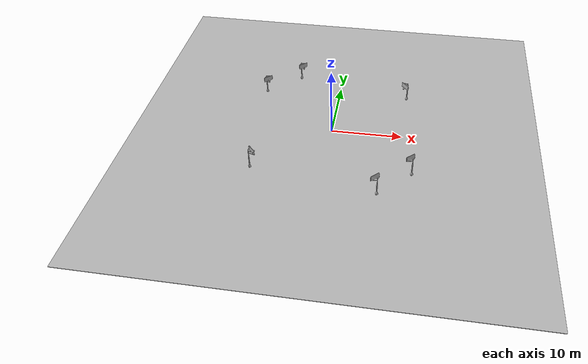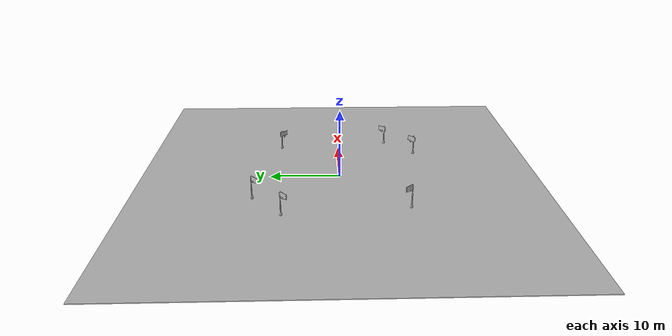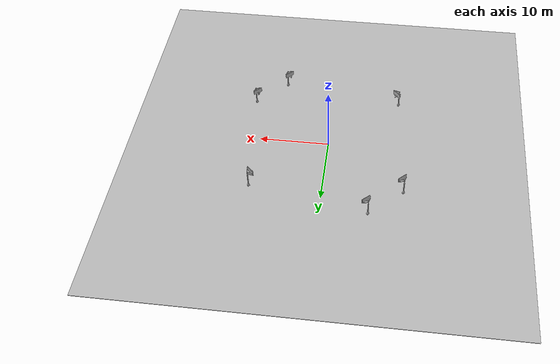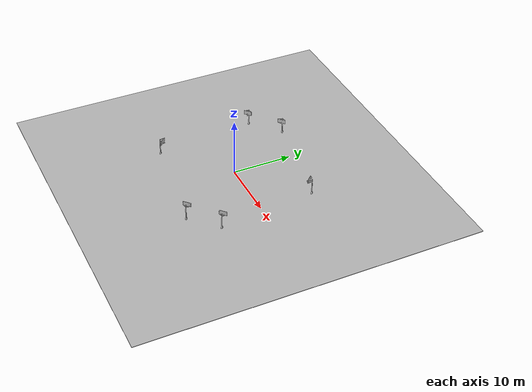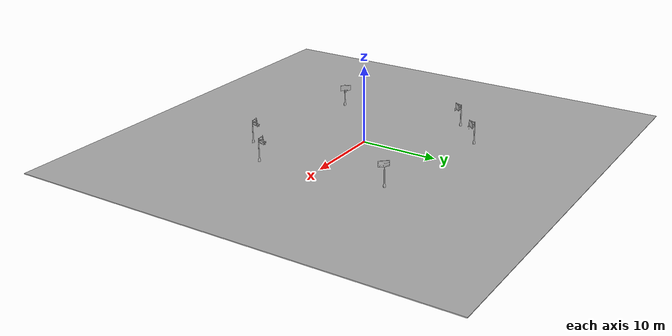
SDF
<sdf version="1.6">
 <world name="default">
  <physics type="ode">
   <max_step_size>0.004</max_step_size>
   <real_time_factor>1</real_time_factor>
   <real_time_update_rate>250</real_time_update_rate>
  </physics>
  <light name="sun" type="directional">
   <pose>0 0 100 0 -0 0</pose>
   <diffuse>0.8 0.8 0.8 1</diffuse>
   <specular>0.2 0.2 0.2 1</specular>
   <attenuation>
    <range>1000</range>
    <constant>0.9</constant>
    <linear>0.01</linear>
    <quadratic>0.001</quadratic>
   </attenuation>
   <direction>-0.5 0.1 -0.9</direction>
  </light>
  <include>
   <uri>model://basketball_hoop</uri>
   <name>basketball_hoop_1</name>
   <pose>9.85613 8.68633 -0.04 1.5708 3e-06 -0.817709</pose>
  </include>
  <include>
   <uri>model://basketball_hoop</uri>
   <name>basketball_hoop_2</name>
   <pose>-9.425089 -8.900954 -0.040001 1.570796327 0 2.32422</pose>
  </include>
  <include>
   <uri>model://basketball_hoop</uri>
   <name>basketball_hoop_3</name>
   <pose>7.32608 -11.444163 -0.04 1.570796327 0 -2.38091</pose>
  </include>
  <include>
   <uri>model://basketball_hoop</uri>
   <name>basketball_hoop_4</name>
   <pose>11.559082 -7.229638 -0.04 1.570796327 0 -2.4077</pose>
  </include>
  <include>
   <uri>model://basketball_hoop</uri>
   <name>basketball_hoop_5</name>
   <pose>-6.390387 11.759531 -0.04 1.570796327 0 0.747194</pose>
  </include>
  <include>
   <uri>model://basketball_hoop</uri>
   <name>basketball_hoop_6</name>
   <pose>-10.986398 7.596694 -0.04 1.570796327 0 0.740997</pose>
  </include>
  <model name="basketball_court">
   <pose>0.4 0 0 0 -0 1.5708</pose>
   <static>1</static>
   <link name="floor">
    <collision name="collision"><geometry><box><size>57.5 57.5 0.1</size></box></geometry></collision>
    <visual name="visual">
     <cast_shadows>0</cast_shadows>
     <geometry><box><size>57.5 57.5 0.1</size></box></geometry>
     <material>
      <script>
       <uri>model://basketball_court/materials/scripts</uri>
       <uri>model://basketball_court/materials/textures</uri>
       <name>basketball_court</name>
      </script>
     </material>
    </visual>
   </link>
  </model>
  <gravity>0 0 -9.8</gravity>
  <magnetic_field>6e-06 2.3e-05 -4.2e-05</magnetic_field>
  <atmosphere type="adiabatic"/>
  <scene><ambient>0.4 0.4 0.4 1</ambient><background>0.7 0.7 0.7 1</background><shadows>1</shadows></scene>
  <spherical_coordinates>
   <surface_model>EARTH_WGS84</surface_model>
   <latitude_deg>0</latitude_deg>
   <longitude_deg>0</longitude_deg>
   <elevation>0</elevation>
   <heading_deg>0</heading_deg>
  </spherical_coordinates>
 </world>
</sdf>

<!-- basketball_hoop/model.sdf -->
<sdf version="1.5">
  <model name="basketball_hoop">
    <static>true</static>
    <link name="link">
      <collision name="collision">
        <geometry>
          <mesh>
            <uri>model://basketball_hoop/meshes/basketball_hoop_etsi.obj</uri>
            <scale>0.333 0.333 0.333</scale>
          </mesh>
        </geometry>
      </collision>
      <visual name="visual">
        <geometry>
          <mesh>
            <uri>model://basketball_hoop/meshes/basketball_hoop_etsi.obj</uri>
            <scale>0.333 0.333 0.333</scale>
          </mesh>
        </geometry>
      </visual>
    </link>
  </model>
</sdf>
